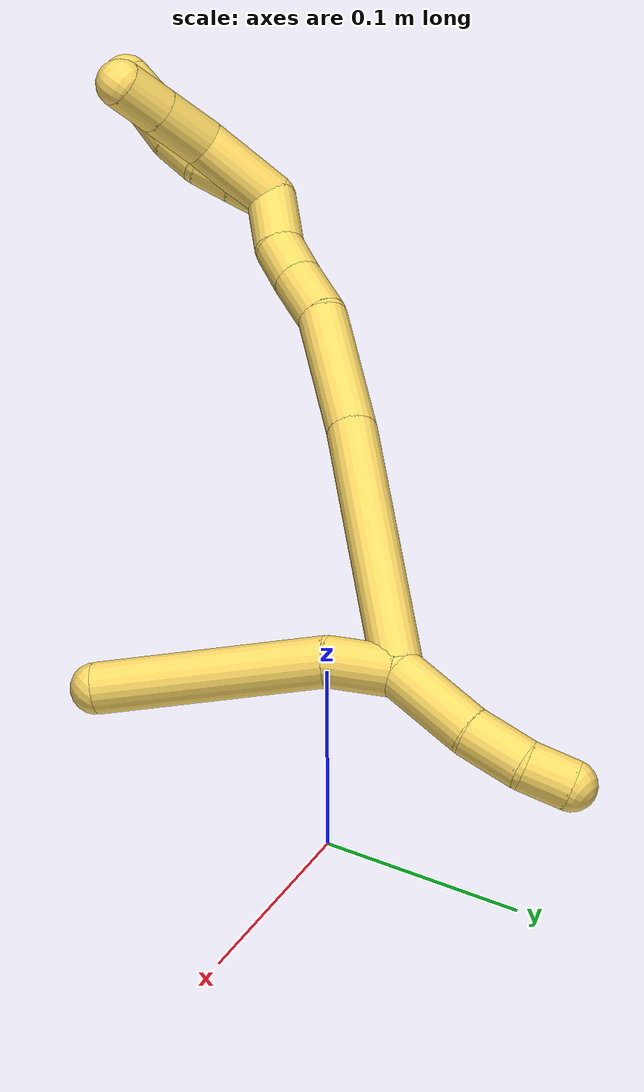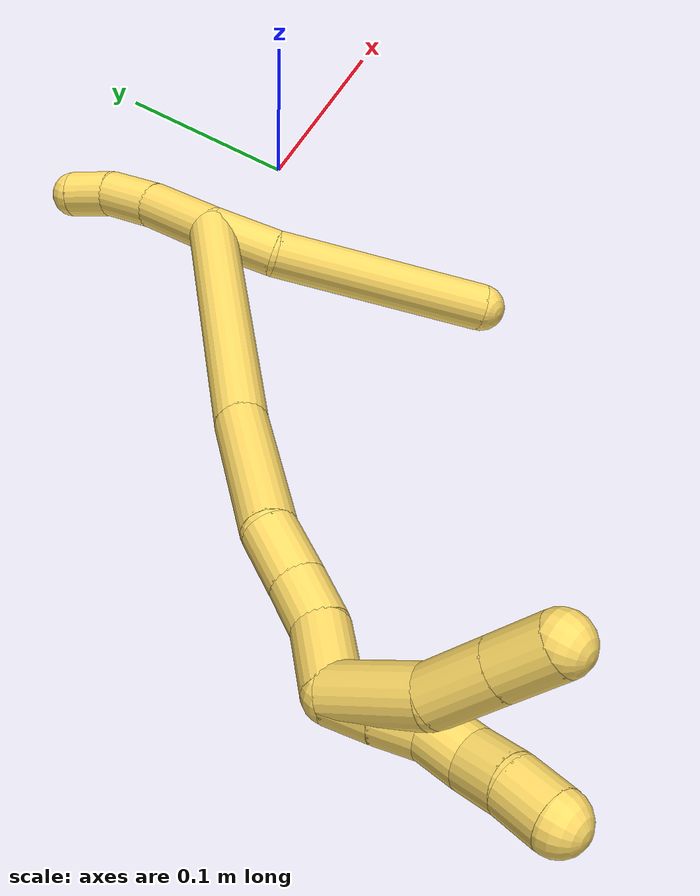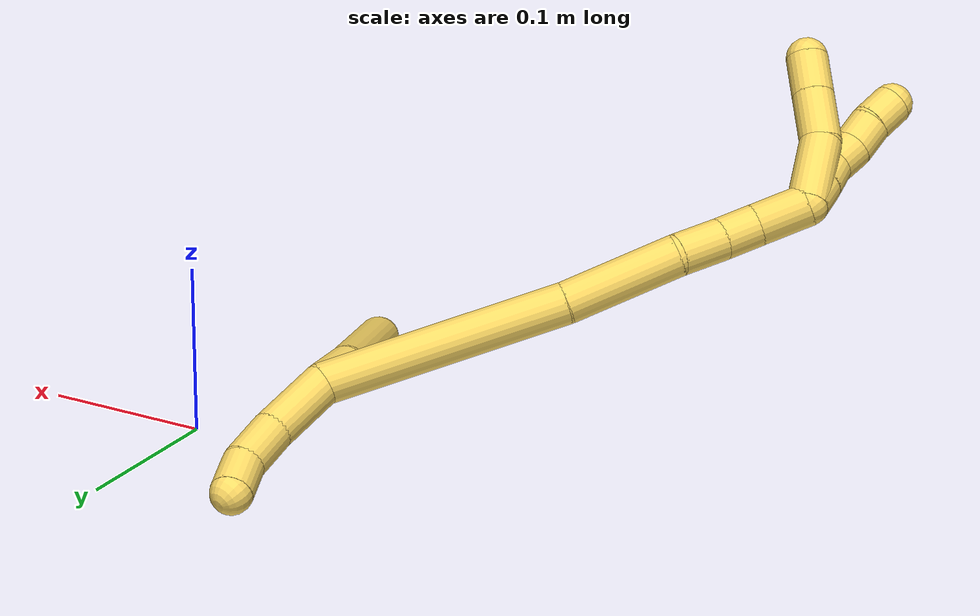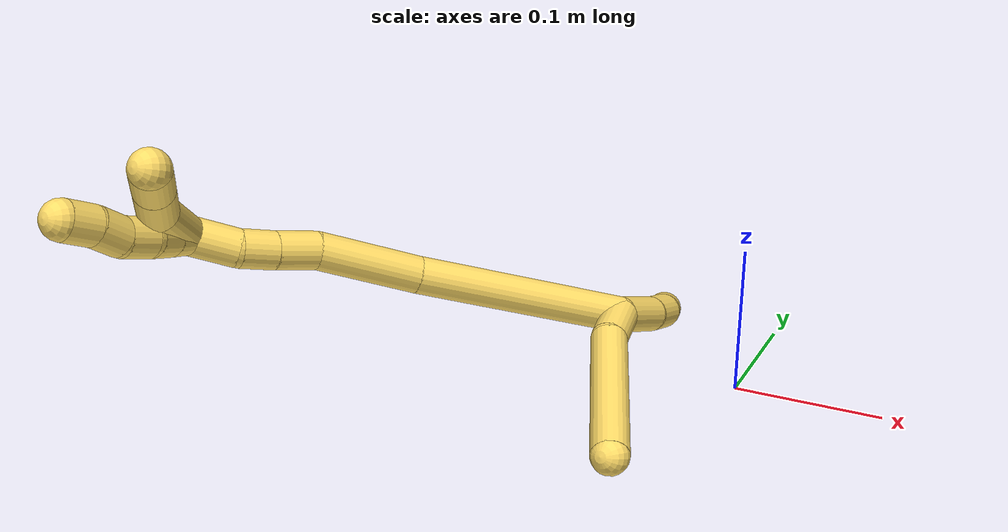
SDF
<sdf version="1.7">
 <world name="default">
  <model name="5">
   <static>0</static>
   <link name="5">
    <collision name="collision-cylinder-e_1_2_8">
     <pose>0.008855 0.002235 0.015368 -0.144418 0.518211 -0.038342</pose>
     <geometry><cylinder><radius>0.0125</radius><length>0.035754</length></cylinder></geometry>
     <surface>
      <friction><ode><mu>1.16</mu><mu2>1.16</mu2><slip1>0</slip1><slip2>0</slip2></ode></friction>
      <contact><ode><kp>1e+06</kp><kd>1</kd><max_vel>0</max_vel><min_depth>0.001</min_depth></ode></contact>
     </surface>
    </collision>
    <visual name="visual-cylinder-e_1_2_8">
     <pose>0.008855 0.002235 0.015368 -0.144418 0.518211 -0.038342</pose>
     <geometry><cylinder><radius>0.0125</radius><length>0.035754</length></cylinder></geometry>
     <material><ambient>1 0.858824 0.4 1</ambient></material>
    </visual>
    <collision name="collision-cylinder-e_2_8_6">
     <pose>0.055639 0.019216 0.070823 -0.3525 0.726151 -0.135119</pose>
     <geometry><cylinder><radius>0.0125</radius><length>0.114246</length></cylinder></geometry>
     <surface>
      <friction><ode><mu>1.16</mu><mu2>1.16</mu2><slip1>0</slip1><slip2>0</slip2></ode></friction>
      <contact><ode><kp>1e+06</kp><kd>1</kd><max_vel>0</max_vel><min_depth>0.001</min_depth></ode></contact>
     </surface>
    </collision>
    <visual name="visual-cylinder-e_2_8_6">
     <pose>0.055639 0.019216 0.070823 -0.3525 0.726151 -0.135119</pose>
     <geometry><cylinder><radius>0.0125</radius><length>0.114246</length></cylinder></geometry>
     <material><ambient>1 0.858824 0.4 1</ambient></material>
    </visual>
    <collision name="collision-cylinder-e_1_2_9">
     <pose>-0.000251 6.7e-05 -0.022691 -3.13865 -0.011043 2.62162</pose>
     <geometry><cylinder><radius>0.0125</radius><length>0.045385</length></cylinder></geometry>
     <surface>
      <friction><ode><mu>1.16</mu><mu2>1.16</mu2><slip1>0</slip1><slip2>0</slip2></ode></friction>
      <contact><ode><kp>1e+06</kp><kd>1</kd><max_vel>0</max_vel><min_depth>0.001</min_depth></ode></contact>
     </surface>
    </collision>
    <visual name="visual-cylinder-e_1_2_9">
     <pose>-0.000251 6.7e-05 -0.022691 -3.13865 -0.011043 2.62162</pose>
     <geometry><cylinder><radius>0.0125</radius><length>0.045385</length></cylinder></geometry>
     <material><ambient>1 0.858824 0.4 1</ambient></material>
    </visual>
    <collision name="collision-cylinder-e_2_9_10">
     <pose>-0.002125 -0.001659 -0.060437 3.02311 -0.106672 -1.46576</pose>
     <geometry><cylinder><radius>0.0125</radius><length>0.030496</length></cylinder></geometry>
     <surface>
      <friction><ode><mu>1.16</mu><mu2>1.16</mu2><slip1>0</slip1><slip2>0</slip2></ode></friction>
      <contact><ode><kp>1e+06</kp><kd>1</kd><max_vel>0</max_vel><min_depth>0.001</min_depth></ode></contact>
     </surface>
    </collision>
    <visual name="visual-cylinder-e_2_9_10">
     <pose>-0.002125 -0.001659 -0.060437 3.02311 -0.106672 -1.46576</pose>
     <geometry><cylinder><radius>0.0125</radius><length>0.030496</length></cylinder></geometry>
     <material><ambient>1 0.858824 0.4 1</ambient></material>
    </visual>
    <collision name="collision-cylinder-e_3_10_5">
     <pose>-0.005527 -0.008034 -0.086504 2.74717 -0.148066 -0.710865</pose>
     <geometry><cylinder><radius>0.0125</radius><length>0.024119</length></cylinder></geometry>
     <surface>
      <friction><ode><mu>1.16</mu><mu2>1.16</mu2><slip1>0</slip1><slip2>0</slip2></ode></friction>
      <contact><ode><kp>1e+06</kp><kd>1</kd><max_vel>0</max_vel><min_depth>0.001</min_depth></ode></contact>
     </surface>
    </collision>
    <visual name="visual-cylinder-e_3_10_5">
     <pose>-0.005527 -0.008034 -0.086504 2.74717 -0.148066 -0.710865</pose>
     <geometry><cylinder><radius>0.0125</radius><length>0.024119</length></cylinder></geometry>
     <material><ambient>1 0.858824 0.4 1</ambient></material>
    </visual>
    <collision name="collision-cylinder-e_1_2_11">
     <pose>-0.021814 -0.042177 0.055899 0.646391 -0.30198 -0.101833</pose>
     <geometry><cylinder><radius>0.0125</radius><length>0.146689</length></cylinder></geometry>
     <surface>
      <friction><ode><mu>1.16</mu><mu2>1.16</mu2><slip1>0</slip1><slip2>0</slip2></ode></friction>
      <contact><ode><kp>1e+06</kp><kd>1</kd><max_vel>0</max_vel><min_depth>0.001</min_depth></ode></contact>
     </surface>
    </collision>
    <visual name="visual-cylinder-e_1_2_11">
     <pose>-0.021814 -0.042177 0.055899 0.646391 -0.30198 -0.101833</pose>
     <geometry><cylinder><radius>0.0125</radius><length>0.146689</length></cylinder></geometry>
     <material><ambient>1 0.858824 0.4 1</ambient></material>
    </visual>
    <collision name="collision-cylinder-e_2_11_12">
     <pose>-0.054588 -0.101722 0.139915 0.553324 -0.320252 -0.091654</pose>
     <geometry><cylinder><radius>0.0125</radius><length>0.069638</length></cylinder></geometry>
     <surface>
      <friction><ode><mu>1.16</mu><mu2>1.16</mu2><slip1>0</slip1><slip2>0</slip2></ode></friction>
      <contact><ode><kp>1e+06</kp><kd>1</kd><max_vel>0</max_vel><min_depth>0.001</min_depth></ode></contact>
     </surface>
    </collision>
    <visual name="visual-cylinder-e_2_11_12">
     <pose>-0.054588 -0.101722 0.139915 0.553324 -0.320252 -0.091654</pose>
     <geometry><cylinder><radius>0.0125</radius><length>0.069638</length></cylinder></geometry>
     <material><ambient>1 0.858824 0.4 1</ambient></material>
    </visual>
    <collision name="collision-cylinder-e_3_12_13">
     <pose>-0.066422 -0.125335 0.180809 0.454654 -0.061248 -0.014172</pose>
     <geometry><cylinder><radius>0.0125</radius><length>0.028497</length></cylinder></geometry>
     <surface>
      <friction><ode><mu>1.16</mu><mu2>1.16</mu2><slip1>0</slip1><slip2>0</slip2></ode></friction>
      <contact><ode><kp>1e+06</kp><kd>1</kd><max_vel>0</max_vel><min_depth>0.001</min_depth></ode></contact>
     </surface>
    </collision>
    <visual name="visual-cylinder-e_3_12_13">
     <pose>-0.066422 -0.125335 0.180809 0.454654 -0.061248 -0.014172</pose>
     <geometry><cylinder><radius>0.0125</radius><length>0.028497</length></cylinder></geometry>
     <material><ambient>1 0.858824 0.4 1</ambient></material>
    </visual>
    <collision name="collision-cylinder-e_4_13_14">
     <pose>-0.068657 -0.136655 0.203996 0.453536 -0.117222 -0.027077</pose>
     <geometry><cylinder><radius>0.0125</radius><length>0.023321</length></cylinder></geometry>
     <surface>
      <friction><ode><mu>1.16</mu><mu2>1.16</mu2><slip1>0</slip1><slip2>0</slip2></ode></friction>
      <contact><ode><kp>1e+06</kp><kd>1</kd><max_vel>0</max_vel><min_depth>0.001</min_depth></ode></contact>
     </surface>
    </collision>
    <visual name="visual-cylinder-e_4_13_14">
     <pose>-0.068657 -0.136655 0.203996 0.453536 -0.117222 -0.027077</pose>
     <geometry><cylinder><radius>0.0125</radius><length>0.023321</length></cylinder></geometry>
     <material><ambient>1 0.858824 0.4 1</ambient></material>
    </visual>
    <collision name="collision-cylinder-e_5_14_1">
     <pose>-0.07562 -0.150333 0.226584 0.615077 -0.359172 -0.115193</pose>
     <geometry><cylinder><radius>0.0125</radius><length>0.031855</length></cylinder></geometry>
     <surface>
      <friction><ode><mu>1.16</mu><mu2>1.16</mu2><slip1>0</slip1><slip2>0</slip2></ode></friction>
      <contact><ode><kp>1e+06</kp><kd>1</kd><max_vel>0</max_vel><min_depth>0.001</min_depth></ode></contact>
     </surface>
    </collision>
    <visual name="visual-cylinder-e_5_14_1">
     <pose>-0.07562 -0.150333 0.226584 0.615077 -0.359172 -0.115193</pose>
     <geometry><cylinder><radius>0.0125</radius><length>0.031855</length></cylinder></geometry>
     <material><ambient>1 0.858824 0.4 1</ambient></material>
    </visual>
    <collision name="collision-cylinder-e_1_1_15">
     <pose>-0.079717 -0.157226 0.2485 -0.173886 0.150649 -0.013156</pose>
     <geometry><cylinder><radius>0.0125</radius><length>0.02</length></cylinder></geometry>
     <surface>
      <friction><ode><mu>1.16</mu><mu2>1.16</mu2><slip1>0</slip1><slip2>0</slip2></ode></friction>
      <contact><ode><kp>1e+06</kp><kd>1</kd><max_vel>0</max_vel><min_depth>0.001</min_depth></ode></contact>
     </surface>
    </collision>
    <visual name="visual-cylinder-e_1_1_15">
     <pose>-0.079717 -0.157226 0.2485 -0.173886 0.150649 -0.013156</pose>
     <geometry><cylinder><radius>0.0125</radius><length>0.02</length></cylinder></geometry>
     <material><ambient>1 0.858824 0.4 1</ambient></material>
    </visual>
    <collision name="collision-cylinder-e_2_15_16">
     <pose>-0.076961 -0.153316 0.267912 -0.22356 0.125847 -0.014145</pose>
     <geometry><cylinder><radius>0.0125</radius><length>0.02</length></cylinder></geometry>
     <surface>
      <friction><ode><mu>1.16</mu><mu2>1.16</mu2><slip1>0</slip1><slip2>0</slip2></ode></friction>
      <contact><ode><kp>1e+06</kp><kd>1</kd><max_vel>0</max_vel><min_depth>0.001</min_depth></ode></contact>
     </surface>
    </collision>
    <visual name="visual-cylinder-e_2_15_16">
     <pose>-0.076961 -0.153316 0.267912 -0.22356 0.125847 -0.014145</pose>
     <geometry><cylinder><radius>0.0125</radius><length>0.02</length></cylinder></geometry>
     <material><ambient>1 0.858824 0.4 1</ambient></material>
    </visual>
    <collision name="collision-cylinder-e_3_16_17">
     <pose>-0.075573 -0.151777 0.287563 0.066089 0.013321 0.00044</pose>
     <geometry><cylinder><radius>0.0125</radius><length>0.02</length></cylinder></geometry>
     <surface>
      <friction><ode><mu>1.16</mu><mu2>1.16</mu2><slip1>0</slip1><slip2>0</slip2></ode></friction>
      <contact><ode><kp>1e+06</kp><kd>1</kd><max_vel>0</max_vel><min_depth>0.001</min_depth></ode></contact>
     </surface>
    </collision>
    <visual name="visual-cylinder-e_3_16_17">
     <pose>-0.075573 -0.151777 0.287563 0.066089 0.013321 0.00044</pose>
     <geometry><cylinder><radius>0.0125</radius><length>0.02</length></cylinder></geometry>
     <material><ambient>1 0.858824 0.4 1</ambient></material>
    </visual>
    <collision name="collision-cylinder-e_4_17_18">
     <pose>-0.078068 -0.152086 0.307182 -0.036362 -0.265914 0.004864</pose>
     <geometry><cylinder><radius>0.0125</radius><length>0.02</length></cylinder></geometry>
     <surface>
      <friction><ode><mu>1.16</mu><mu2>1.16</mu2><slip1>0</slip1><slip2>0</slip2></ode></friction>
      <contact><ode><kp>1e+06</kp><kd>1</kd><max_vel>0</max_vel><min_depth>0.001</min_depth></ode></contact>
     </surface>
    </collision>
    <visual name="visual-cylinder-e_4_17_18">
     <pose>-0.078068 -0.152086 0.307182 -0.036362 -0.265914 0.004864</pose>
     <geometry><cylinder><radius>0.0125</radius><length>0.02</length></cylinder></geometry>
     <material><ambient>1 0.858824 0.4 1</ambient></material>
    </visual>
    <collision name="collision-cylinder-e_5_18_4">
     <pose>-0.081951 -0.152625 0.326706 0.08975 -0.125917 -0.005662</pose>
     <geometry><cylinder><radius>0.0125</radius><length>0.02</length></cylinder></geometry>
     <surface>
      <friction><ode><mu>1.16</mu><mu2>1.16</mu2><slip1>0</slip1><slip2>0</slip2></ode></friction>
      <contact><ode><kp>1e+06</kp><kd>1</kd><max_vel>0</max_vel><min_depth>0.001</min_depth></ode></contact>
     </surface>
    </collision>
    <visual name="visual-cylinder-e_5_18_4">
     <pose>-0.081951 -0.152625 0.326706 0.08975 -0.125917 -0.005662</pose>
     <geometry><cylinder><radius>0.0125</radius><length>0.02</length></cylinder></geometry>
     <material><ambient>1 0.858824 0.4 1</ambient></material>
    </visual>
    <collision name="collision-cylinder-e_1_1_19">
     <pose>-0.084684 -0.149625 0.258354 -0.443689 -0.158439 0.035808</pose>
     <geometry><cylinder><radius>0.0125</radius><length>0.043933</length></cylinder></geometry>
     <surface>
      <friction><ode><mu>1.16</mu><mu2>1.16</mu2><slip1>0</slip1><slip2>0</slip2></ode></friction>
      <contact><ode><kp>1e+06</kp><kd>1</kd><max_vel>0</max_vel><min_depth>0.001</min_depth></ode></contact>
     </surface>
    </collision>
    <visual name="visual-cylinder-e_1_1_19">
     <pose>-0.084684 -0.149625 0.258354 -0.443689 -0.158439 0.035808</pose>
     <geometry><cylinder><radius>0.0125</radius><length>0.043933</length></cylinder></geometry>
     <material><ambient>1 0.858824 0.4 1</ambient></material>
    </visual>
    <collision name="collision-cylinder-e_2_19_20">
     <pose>-0.091369 -0.129687 0.288604 -0.783865 -0.210713 0.087359</pose>
     <geometry><cylinder><radius>0.0125</radius><length>0.030782</length></cylinder></geometry>
     <surface>
      <friction><ode><mu>1.16</mu><mu2>1.16</mu2><slip1>0</slip1><slip2>0</slip2></ode></friction>
      <contact><ode><kp>1e+06</kp><kd>1</kd><max_vel>0</max_vel><min_depth>0.001</min_depth></ode></contact>
     </surface>
    </collision>
    <visual name="visual-cylinder-e_2_19_20">
     <pose>-0.091369 -0.129687 0.288604 -0.783865 -0.210713 0.087359</pose>
     <geometry><cylinder><radius>0.0125</radius><length>0.030782</length></cylinder></geometry>
     <material><ambient>1 0.858824 0.4 1</ambient></material>
    </visual>
    <collision name="collision-cylinder-e_3_20_3">
     <pose>-0.097255 -0.110349 0.308026 -0.782439 -0.212519 0.087935</pose>
     <geometry><cylinder><radius>0.0125</radius><length>0.025285</length></cylinder></geometry>
     <surface>
      <friction><ode><mu>1.16</mu><mu2>1.16</mu2><slip1>0</slip1><slip2>0</slip2></ode></friction>
      <contact><ode><kp>1e+06</kp><kd>1</kd><max_vel>0</max_vel><min_depth>0.001</min_depth></ode></contact>
     </surface>
    </collision>
    <visual name="visual-cylinder-e_3_20_3">
     <pose>-0.097255 -0.110349 0.308026 -0.782439 -0.212519 0.087935</pose>
     <geometry><cylinder><radius>0.0125</radius><length>0.025285</length></cylinder></geometry>
     <material><ambient>1 0.858824 0.4 1</ambient></material>
    </visual>
    <collision name="collision-sphere-3">
     <pose>-0.099921 -0.101636 0.316791 0 -0 0</pose>
     <geometry><sphere><radius>0.0125</radius></sphere></geometry>
     <surface>
      <friction><ode><mu>1.16</mu><mu2>1.16</mu2><slip1>0</slip1><slip2>0</slip2></ode></friction>
      <contact><ode><kp>1e+06</kp><kd>1</kd><max_vel>0</max_vel><min_depth>0.001</min_depth></ode></contact>
     </surface>
    </collision>
    <visual name="visual-sphere-3">
     <pose>-0.099921 -0.101636 0.316791 0 -0 0</pose>
     <geometry><sphere><radius>0.0125</radius></sphere></geometry>
     <material><ambient>1 0.858824 0.4 1</ambient></material>
    </visual>
    <collision name="collision-sphere-20">
     <pose>-0.094588 -0.119061 0.299262 0 -0 0</pose>
     <geometry><sphere><radius>0.0125</radius></sphere></geometry>
     <surface>
      <friction><ode><mu>1.16</mu><mu2>1.16</mu2><slip1>0</slip1><slip2>0</slip2></ode></friction>
      <contact><ode><kp>1e+06</kp><kd>1</kd><max_vel>0</max_vel><min_depth>0.001</min_depth></ode></contact>
     </surface>
    </collision>
    <visual name="visual-sphere-20">
     <pose>-0.094588 -0.119061 0.299262 0 -0 0</pose>
     <geometry><sphere><radius>0.0125</radius></sphere></geometry>
     <material><ambient>1 0.858824 0.4 1</ambient></material>
    </visual>
    <collision name="collision-sphere-19">
     <pose>-0.08815 -0.140313 0.277945 0 -0 0</pose>
     <geometry><sphere><radius>0.0125</radius></sphere></geometry>
     <surface>
      <friction><ode><mu>1.16</mu><mu2>1.16</mu2><slip1>0</slip1><slip2>0</slip2></ode></friction>
      <contact><ode><kp>1e+06</kp><kd>1</kd><max_vel>0</max_vel><min_depth>0.001</min_depth></ode></contact>
     </surface>
    </collision>
    <visual name="visual-sphere-19">
     <pose>-0.08815 -0.140313 0.277945 0 -0 0</pose>
     <geometry><sphere><radius>0.0125</radius></sphere></geometry>
     <material><ambient>1 0.858824 0.4 1</ambient></material>
    </visual>
    <collision name="collision-sphere-5">
     <pose>-0.007306 -0.012618 -0.097516 0 -0 0</pose>
     <geometry><sphere><radius>0.0125</radius></sphere></geometry>
     <surface>
      <friction><ode><mu>1.16</mu><mu2>1.16</mu2><slip1>0</slip1><slip2>0</slip2></ode></friction>
      <contact><ode><kp>1e+06</kp><kd>1</kd><max_vel>0</max_vel><min_depth>0.001</min_depth></ode></contact>
     </surface>
    </collision>
    <visual name="visual-sphere-5">
     <pose>-0.007306 -0.012618 -0.097516 0 -0 0</pose>
     <geometry><sphere><radius>0.0125</radius></sphere></geometry>
     <material><ambient>1 0.858824 0.4 1</ambient></material>
    </visual>
    <collision name="collision-sphere-10">
     <pose>-0.003748 -0.003451 -0.075493 0 -0 0</pose>
     <geometry><sphere><radius>0.0125</radius></sphere></geometry>
     <surface>
      <friction><ode><mu>1.16</mu><mu2>1.16</mu2><slip1>0</slip1><slip2>0</slip2></ode></friction>
      <contact><ode><kp>1e+06</kp><kd>1</kd><max_vel>0</max_vel><min_depth>0.001</min_depth></ode></contact>
     </surface>
    </collision>
    <visual name="visual-sphere-10">
     <pose>-0.003748 -0.003451 -0.075493 0 -0 0</pose>
     <geometry><sphere><radius>0.0125</radius></sphere></geometry>
     <material><ambient>1 0.858824 0.4 1</ambient></material>
    </visual>
    <collision name="collision-sphere-6">
     <pose>0.093569 0.033963 0.11091 0 -0 0</pose>
     <geometry><sphere><radius>0.0125</radius></sphere></geometry>
     <surface>
      <friction><ode><mu>1.16</mu><mu2>1.16</mu2><slip1>0</slip1><slip2>0</slip2></ode></friction>
      <contact><ode><kp>1e+06</kp><kd>1</kd><max_vel>0</max_vel><min_depth>0.001</min_depth></ode></contact>
     </surface>
    </collision>
    <visual name="visual-sphere-6">
     <pose>0.093569 0.033963 0.11091 0 -0 0</pose>
     <geometry><sphere><radius>0.0125</radius></sphere></geometry>
     <material><ambient>1 0.858824 0.4 1</ambient></material>
    </visual>
    <collision name="collision-sphere-9">
     <pose>-0.000501 0.000133 -0.045382 0 -0 0</pose>
     <geometry><sphere><radius>0.0125</radius></sphere></geometry>
     <surface>
      <friction><ode><mu>1.16</mu><mu2>1.16</mu2><slip1>0</slip1><slip2>0</slip2></ode></friction>
      <contact><ode><kp>1e+06</kp><kd>1</kd><max_vel>0</max_vel><min_depth>0.001</min_depth></ode></contact>
     </surface>
    </collision>
    <visual name="visual-sphere-9">
     <pose>-0.000501 0.000133 -0.045382 0 -0 0</pose>
     <geometry><sphere><radius>0.0125</radius></sphere></geometry>
     <material><ambient>1 0.858824 0.4 1</ambient></material>
    </visual>
    <collision name="collision-sphere-2">
     <geometry><sphere><radius>0.0125</radius></sphere></geometry>
     <surface>
      <friction><ode><mu>1.16</mu><mu2>1.16</mu2><slip1>0</slip1><slip2>0</slip2></ode></friction>
      <contact><ode><kp>1e+06</kp><kd>1</kd><max_vel>0</max_vel><min_depth>0.001</min_depth></ode></contact>
     </surface>
    </collision>
    <visual name="visual-sphere-2">
     <geometry><sphere><radius>0.0125</radius></sphere></geometry>
     <material><ambient>1 0.858824 0.4 1</ambient></material>
    </visual>
    <collision name="collision-sphere-8">
     <pose>0.01771 0.00447 0.030736 0 -0 0</pose>
     <geometry><sphere><radius>0.0125</radius></sphere></geometry>
     <surface>
      <friction><ode><mu>1.16</mu><mu2>1.16</mu2><slip1>0</slip1><slip2>0</slip2></ode></friction>
      <contact><ode><kp>1e+06</kp><kd>1</kd><max_vel>0</max_vel><min_depth>0.001</min_depth></ode></contact>
     </surface>
    </collision>
    <visual name="visual-sphere-8">
     <pose>0.01771 0.00447 0.030736 0 -0 0</pose>
     <geometry><sphere><radius>0.0125</radius></sphere></geometry>
     <material><ambient>1 0.858824 0.4 1</ambient></material>
    </visual>
    <collision name="collision-sphere-11">
     <pose>-0.043627 -0.084354 0.111798 0 -0 0</pose>
     <geometry><sphere><radius>0.0125</radius></sphere></geometry>
     <surface>
      <friction><ode><mu>1.16</mu><mu2>1.16</mu2><slip1>0</slip1><slip2>0</slip2></ode></friction>
      <contact><ode><kp>1e+06</kp><kd>1</kd><max_vel>0</max_vel><min_depth>0.001</min_depth></ode></contact>
     </surface>
    </collision>
    <visual name="visual-sphere-11">
     <pose>-0.043627 -0.084354 0.111798 0 -0 0</pose>
     <geometry><sphere><radius>0.0125</radius></sphere></geometry>
     <material><ambient>1 0.858824 0.4 1</ambient></material>
    </visual>
    <collision name="collision-sphere-12">
     <pose>-0.065549 -0.11909 0.168032 0 -0 0</pose>
     <geometry><sphere><radius>0.0125</radius></sphere></geometry>
     <surface>
      <friction><ode><mu>1.16</mu><mu2>1.16</mu2><slip1>0</slip1><slip2>0</slip2></ode></friction>
      <contact><ode><kp>1e+06</kp><kd>1</kd><max_vel>0</max_vel><min_depth>0.001</min_depth></ode></contact>
     </surface>
    </collision>
    <visual name="visual-sphere-12">
     <pose>-0.065549 -0.11909 0.168032 0 -0 0</pose>
     <geometry><sphere><radius>0.0125</radius></sphere></geometry>
     <material><ambient>1 0.858824 0.4 1</ambient></material>
    </visual>
    <collision name="collision-sphere-13">
     <pose>-0.067294 -0.131581 0.193586 0 -0 0</pose>
     <geometry><sphere><radius>0.0125</radius></sphere></geometry>
     <surface>
      <friction><ode><mu>1.16</mu><mu2>1.16</mu2><slip1>0</slip1><slip2>0</slip2></ode></friction>
      <contact><ode><kp>1e+06</kp><kd>1</kd><max_vel>0</max_vel><min_depth>0.001</min_depth></ode></contact>
     </surface>
    </collision>
    <visual name="visual-sphere-13">
     <pose>-0.067294 -0.131581 0.193586 0 -0 0</pose>
     <geometry><sphere><radius>0.0125</radius></sphere></geometry>
     <material><ambient>1 0.858824 0.4 1</ambient></material>
    </visual>
    <collision name="collision-sphere-14">
     <pose>-0.070021 -0.141729 0.214406 0 -0 0</pose>
     <geometry><sphere><radius>0.0125</radius></sphere></geometry>
     <surface>
      <friction><ode><mu>1.16</mu><mu2>1.16</mu2><slip1>0</slip1><slip2>0</slip2></ode></friction>
      <contact><ode><kp>1e+06</kp><kd>1</kd><max_vel>0</max_vel><min_depth>0.001</min_depth></ode></contact>
     </surface>
    </collision>
    <visual name="visual-sphere-14">
     <pose>-0.070021 -0.141729 0.214406 0 -0 0</pose>
     <geometry><sphere><radius>0.0125</radius></sphere></geometry>
     <material><ambient>1 0.858824 0.4 1</ambient></material>
    </visual>
    <collision name="collision-sphere-1">
     <pose>-0.081218 -0.158937 0.238762 0 -0 0</pose>
     <geometry><sphere><radius>0.0125</radius></sphere></geometry>
     <surface>
      <friction><ode><mu>1.16</mu><mu2>1.16</mu2><slip1>0</slip1><slip2>0</slip2></ode></friction>
      <contact><ode><kp>1e+06</kp><kd>1</kd><max_vel>0</max_vel><min_depth>0.001</min_depth></ode></contact>
     </surface>
    </collision>
    <visual name="visual-sphere-1">
     <pose>-0.081218 -0.158937 0.238762 0 -0 0</pose>
     <geometry><sphere><radius>0.0125</radius></sphere></geometry>
     <material><ambient>1 0.858824 0.4 1</ambient></material>
    </visual>
    <collision name="collision-sphere-18">
     <pose>-0.080696 -0.151736 0.316825 0 -0 0</pose>
     <geometry><sphere><radius>0.0125</radius></sphere></geometry>
     <surface>
      <friction><ode><mu>1.16</mu><mu2>1.16</mu2><slip1>0</slip1><slip2>0</slip2></ode></friction>
      <contact><ode><kp>1e+06</kp><kd>1</kd><max_vel>0</max_vel><min_depth>0.001</min_depth></ode></contact>
     </surface>
    </collision>
    <visual name="visual-sphere-18">
     <pose>-0.080696 -0.151736 0.316825 0 -0 0</pose>
     <geometry><sphere><radius>0.0125</radius></sphere></geometry>
     <material><ambient>1 0.858824 0.4 1</ambient></material>
    </visual>
    <collision name="collision-sphere-15">
     <pose>-0.078217 -0.155515 0.258238 0 -0 0</pose>
     <geometry><sphere><radius>0.0125</radius></sphere></geometry>
     <surface>
      <friction><ode><mu>1.16</mu><mu2>1.16</mu2><slip1>0</slip1><slip2>0</slip2></ode></friction>
      <contact><ode><kp>1e+06</kp><kd>1</kd><max_vel>0</max_vel><min_depth>0.001</min_depth></ode></contact>
     </surface>
    </collision>
    <visual name="visual-sphere-15">
     <pose>-0.078217 -0.155515 0.258238 0 -0 0</pose>
     <geometry><sphere><radius>0.0125</radius></sphere></geometry>
     <material><ambient>1 0.858824 0.4 1</ambient></material>
    </visual>
    <collision name="collision-sphere-16">
     <pose>-0.075706 -0.151116 0.277586 0 -0 0</pose>
     <geometry><sphere><radius>0.0125</radius></sphere></geometry>
     <surface>
      <friction><ode><mu>1.16</mu><mu2>1.16</mu2><slip1>0</slip1><slip2>0</slip2></ode></friction>
      <contact><ode><kp>1e+06</kp><kd>1</kd><max_vel>0</max_vel><min_depth>0.001</min_depth></ode></contact>
     </surface>
    </collision>
    <visual name="visual-sphere-16">
     <pose>-0.075706 -0.151116 0.277586 0 -0 0</pose>
     <geometry><sphere><radius>0.0125</radius></sphere></geometry>
     <material><ambient>1 0.858824 0.4 1</ambient></material>
    </visual>
    <collision name="collision-sphere-17">
     <pose>-0.07544 -0.152437 0.29754 0 -0 0</pose>
     <geometry><sphere><radius>0.0125</radius></sphere></geometry>
     <surface>
      <friction><ode><mu>1.16</mu><mu2>1.16</mu2><slip1>0</slip1><slip2>0</slip2></ode></friction>
      <contact><ode><kp>1e+06</kp><kd>1</kd><max_vel>0</max_vel><min_depth>0.001</min_depth></ode></contact>
     </surface>
    </collision>
    <visual name="visual-sphere-17">
     <pose>-0.07544 -0.152437 0.29754 0 -0 0</pose>
     <geometry><sphere><radius>0.0125</radius></sphere></geometry>
     <material><ambient>1 0.858824 0.4 1</ambient></material>
    </visual>
    <collision name="collision-sphere-4">
     <pose>-0.083207 -0.153514 0.336586 0 -0 0</pose>
     <geometry><sphere><radius>0.0125</radius></sphere></geometry>
     <surface>
      <friction><ode><mu>1.16</mu><mu2>1.16</mu2><slip1>0</slip1><slip2>0</slip2></ode></friction>
      <contact><ode><kp>1e+06</kp><kd>1</kd><max_vel>0</max_vel><min_depth>0.001</min_depth></ode></contact>
     </surface>
    </collision>
    <visual name="visual-sphere-4">
     <pose>-0.083207 -0.153514 0.336586 0 -0 0</pose>
     <geometry><sphere><radius>0.0125</radius></sphere></geometry>
     <material><ambient>1 0.858824 0.4 1</ambient></material>
    </visual>
    <inertial>
     <pose>-0.031037 -0.068641 0.127376 0 -0 0</pose>
     <mass>0.75</mass>
     <inertia>
      <ixx>0.000365</ixx>
      <ixy>0</ixy>
      <ixz>0</ixz>
      <iyy>0.00036</iyy>
      <iyz>0</iyz>
      <izz>0.000174</izz>
     </inertia>
    </inertial>
   </link>
   <pose>-0.082448 -0.00819 0.043115 0.858068 1.02626 -0.79956</pose>
  </model>
 </world>
</sdf>
